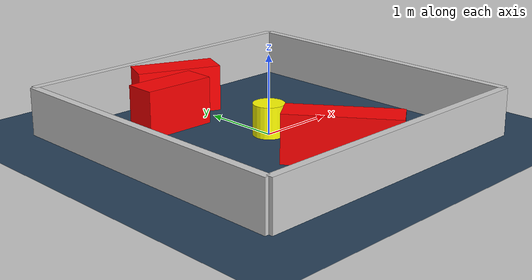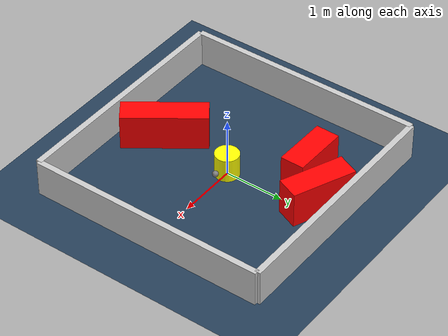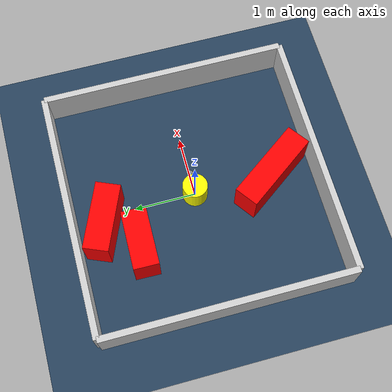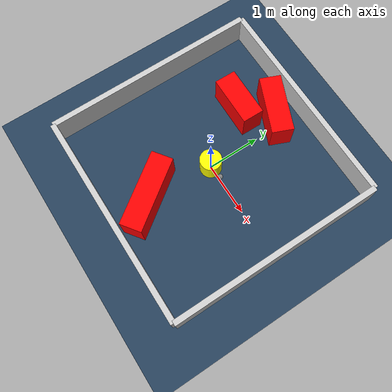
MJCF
<?xml version="1.0" ?>
<mujoco model="generated_environment">
  <option timestep="0.01" integrator="RK4" cone="elliptic"/>
  <default>
    <geom density="1"/>
  </default>
  <asset>
    <texture builtin="gradient" height="3072" rgb1="0.3 0.5 0.7" rgb2="0 0 0" type="skybox" width="512"/>
    <texture builtin="checker" height="300" mark="edge" markrgb="0.8 0.8 0.8" name="groundplane" rgb1="0.2 0.3 0.4" rgb2="0.1 0.2 0.3" type="2d" width="300"/>
    <material name="groundplane" reflectance="0.2" texrepeat="5 5" texture="groundplane" texuniform="true"/>
    <material name="robot" rgba="0.0 1.0 0.0 1"/>
  </asset>
  <worldbody>
    <light dir="0 0 -1" directional="true" pos="0 0 1.5"/>
    <geom condim="4" friction="1.0 0.005 0.001" material="groundplane" name="floor" size="0 0 0.05" type="plane"/>
    <body name="walls">
      <geom name="wall_1" condim="4" pos="-2.0 0.0 0.3" rgba="0.800000011920929 0.800000011920929 0.800000011920929 1.0" size="0.05 2.0 0.3" type="box"/>
      <geom name="wall_2" condim="4" pos="2.0 0.0 0.3" rgba="0.800000011920929 0.800000011920929 0.800000011920929 1.0" size="0.05 2.0 0.3" type="box"/>
      <geom name="wall_3" condim="4" pos="0.0 -2.0 0.3" rgba="0.800000011920929 0.800000011920929 0.800000011920929 1.0" size="2.0 0.05 0.3" type="box"/>
      <geom name="wall_4" condim="4" pos="0.0 2.0 0.3" rgba="0.800000011920929 0.800000011920929 0.800000011920929 1.0" size="2.0 0.05 0.3" type="box"/>
    </body>
    <body name="robot">
      <joint name="joint_x" type="slide" pos="0 0 0" axis="1 0 0"/>
      <joint name="joint_y" type="slide" pos="0 0 0" axis="0 1 0"/>
      <geom name="robot" type="sphere" pos="0.3 0.0 0.2" size="0.05" mass="5." friction="1.0 0.005 0.0001" condim="4" rgba="0.5 0.5 0.5 1.0"/>
      <site name="sensor_ball"/>
    </body>
    <body name="obstacle_movable_1">
      <geom name="obstacle_movable_1" condim="4" pos="0.0 0.0 0.2" euler="0 0 0.0" friction="1.0 0.005 0.001" rgba="1.0 1.0 0.0 1.0" size="0.2 0.2 0.0" type="cylinder" mass="0.1"/>
      <joint type="free"/>
    </body>
    <body name="obstacle_2_static">
      <geom name="obstacle_2_static" condim="4" pos="-0.6745975089987929 1.0465852754025213 0.3" euler="0 0 179.06697486040528" friction="1.0 0.005 0.001" rgba="1 0 0 1" size="0.46656122461838595 0.2 0.3" type="box"/>
    </body>
    <body name="obstacle_3_static">
      <geom name="obstacle_3_static" condim="4" pos="-0.06553887349997689 -1.2439962079951101 0.3" euler="0 0 125.85855146551843" friction="1.0 0.005 0.001" rgba="1 0 0 1" size="0.6876239265749717 0.2 0.3" type="box"/>
    </body>
    <body name="obstacle_4_static">
      <geom name="obstacle_4_static" condim="4" pos="-0.18951859314521813 1.5221517869125292 0.3" euler="0 0 337.0641290971763" friction="1.0 0.005 0.001" rgba="1 0 0 1" size="0.5402436970360849 0.2 0.3" type="box"/>
    </body>
  </worldbody>
  <actuator>
    <motor name="actuator_x" joint="joint_x" gear="1" ctrlrange="-1 1"/>
    <motor name="actuator_y" joint="joint_y" gear="1" ctrlrange="-1 1"/>
  </actuator>
</mujoco>
